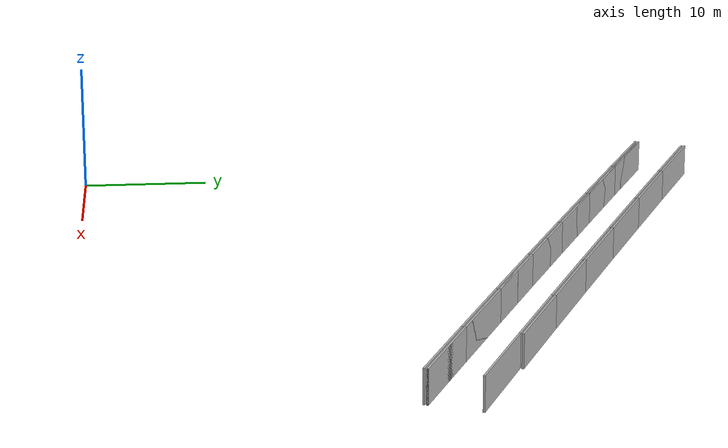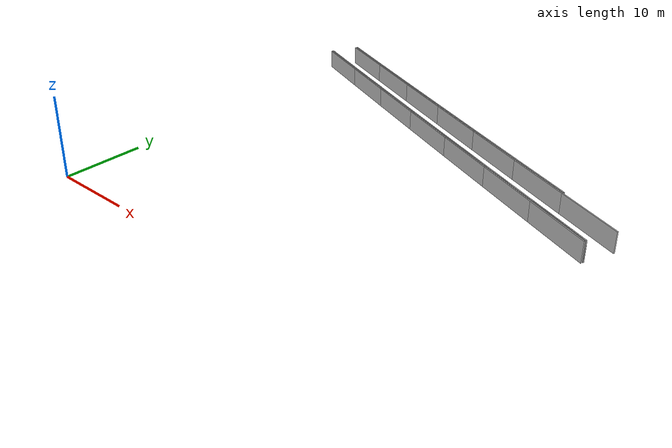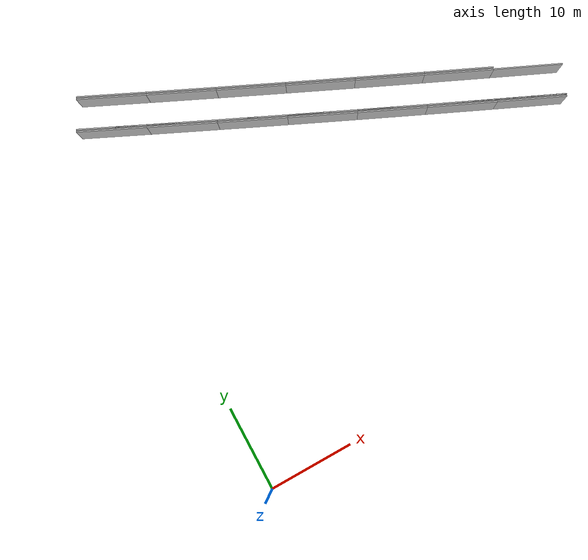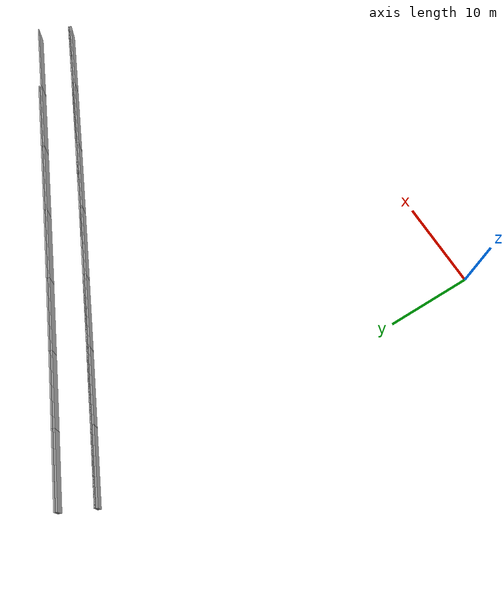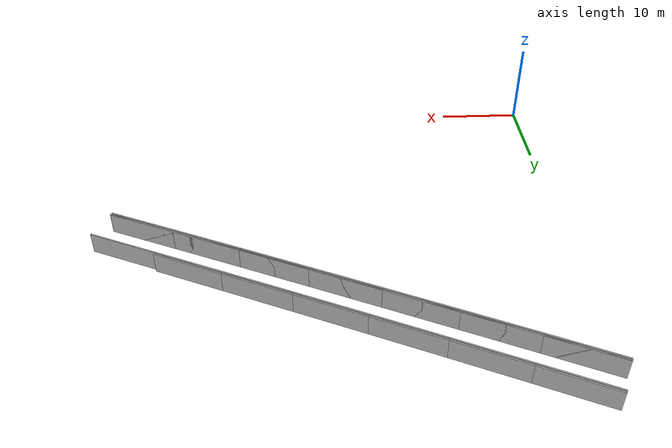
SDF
<?xml version="1.0" ?>
<sdf version="1.6">
  <model name="sps_0310">
    <pose frame="">0 0 0 0 -0 0</pose>
    <static>1</static>
    <self_collide>0</self_collide>
    <allow_auto_disable>0</allow_auto_disable>
    <link name="Wall4305">
      <kinematic>0</kinematic>
      <gravity>1</gravity>
      <self_collide>0</self_collide>
      <collision name="collision">
        <geometry>
          <box>
            <size>8.25169 0.15 2.5</size>
          </box>
        </geometry>
        <pose frame="">0 0 0 0 -0 0</pose>
      </collision>
      <visual name="visual">
        <geometry>
          <box>
            <size>8.25169 0.15 2.5</size>
          </box>
        </geometry>
        <pose frame="">0 0 0 0 -0 0</pose>
        <cast_shadows>1</cast_shadows>
        <transparency>0.0</transparency>
      </visual>
      <pose frame="">4.92705 48.6837 1.25 0 0 -0.43696</pose>
    </link>
    <link name="Wall4306">
      <kinematic>0</kinematic>
      <gravity>1</gravity>
      <self_collide>0</self_collide>
      <collision name="collision">
        <geometry>
          <box>
            <size>8.25156 0.15 2.5</size>
          </box>
        </geometry>
        <pose frame="">0 0 0 0 -0 0</pose>
      </collision>
      <visual name="visual">
        <geometry>
          <box>
            <size>8.25156 0.15 2.5</size>
          </box>
        </geometry>
        <pose frame="">0 0 0 0 -0 0</pose>
        <cast_shadows>1</cast_shadows>
        <transparency>0.0</transparency>
      </visual>
      <pose frame="">12.4076 45.2007 1.25 0 0 -0.43456</pose>
    </link>
    <link name="Wall4307">
      <kinematic>0</kinematic>
      <gravity>1</gravity>
      <self_collide>0</self_collide>
      <collision name="collision">
        <geometry>
          <box>
            <size>8.2516 0.15 2.5</size>
          </box>
        </geometry>
        <pose frame="">0 0 0 0 -0 0</pose>
      </collision>
      <visual name="visual">
        <geometry>
          <box>
            <size>8.2516 0.15 2.5</size>
          </box>
        </geometry>
        <pose frame="">0 0 0 0 -0 0</pose>
        <cast_shadows>1</cast_shadows>
        <transparency>0.0</transparency>
      </visual>
      <pose frame="">19.8963 41.7355 1.25 0 0 -0.43221</pose>
    </link>
    <link name="Wall4308">
      <kinematic>0</kinematic>
      <gravity>1</gravity>
      <self_collide>0</self_collide>
      <collision name="collision">
        <geometry>
          <box>
            <size>8.25149 0.15 2.5</size>
          </box>
        </geometry>
        <pose frame="">0 0 0 0 -0 0</pose>
      </collision>
      <visual name="visual">
        <geometry>
          <box>
            <size>8.25149 0.15 2.5</size>
          </box>
        </geometry>
        <pose frame="">0 0 0 0 -0 0</pose>
        <cast_shadows>1</cast_shadows>
        <transparency>0.0</transparency>
      </visual>
      <pose frame="">27.3931 38.2879 1.25 0 0 -0.429863</pose>
    </link>
    <link name="Wall4309">
      <kinematic>0</kinematic>
      <gravity>1</gravity>
      <self_collide>0</self_collide>
      <collision name="collision">
        <geometry>
          <box>
            <size>8.25128 0.15 2.5</size>
          </box>
        </geometry>
        <pose frame="">0 0 0 0 -0 0</pose>
      </collision>
      <visual name="visual">
        <geometry>
          <box>
            <size>8.25128 0.15 2.5</size>
          </box>
        </geometry>
        <pose frame="">0 0 0 0 -0 0</pose>
        <cast_shadows>1</cast_shadows>
        <transparency>0.0</transparency>
      </visual>
      <pose frame="">34.8978 34.8581 1.25 0 0 -0.427476</pose>
    </link>
    <link name="Wall4310">
      <kinematic>0</kinematic>
      <gravity>1</gravity>
      <self_collide>0</self_collide>
      <collision name="collision">
        <geometry>
          <box>
            <size>8.25168 0.15 2.5</size>
          </box>
        </geometry>
        <pose frame="">0 0 0 0 -0 0</pose>
      </collision>
      <visual name="visual">
        <geometry>
          <box>
            <size>8.25168 0.15 2.5</size>
          </box>
        </geometry>
        <pose frame="">0 0 0 0 -0 0</pose>
        <cast_shadows>1</cast_shadows>
        <transparency>0.0</transparency>
      </visual>
      <pose frame="">42.4108 31.4461 1.25 0 0 -0.425114</pose>
    </link>
    <link name="Wall4311">
      <kinematic>0</kinematic>
      <gravity>1</gravity>
      <self_collide>0</self_collide>
      <collision name="collision">
        <geometry>
          <box>
            <size>8.25174 0.15 2.5</size>
          </box>
        </geometry>
        <pose frame="">0 0 0 0 -0 0</pose>
      </collision>
      <visual name="visual">
        <geometry>
          <box>
            <size>8.25174 0.15 2.5</size>
          </box>
        </geometry>
        <pose frame="">0 0 0 0 -0 0</pose>
        <cast_shadows>1</cast_shadows>
        <transparency>0.0</transparency>
      </visual>
      <pose frame="">49.9321 28.0517 1.25 0 0 -0.422774</pose>
    </link>
    <link name="Wall4331">
      <kinematic>0</kinematic>
      <gravity>1</gravity>
      <self_collide>0</self_collide>
      <collision name="collision">
        <geometry>
          <box>
            <size>8.26097 0.15 2.5</size>
          </box>
        </geometry>
        <pose frame="">0 0 0 0 -0 0</pose>
      </collision>
      <visual name="visual">
        <geometry>
          <box>
            <size>8.26097 0.15 2.5</size>
          </box>
        </geometry>
        <pose frame="">0 0 0 0 -0 0</pose>
        <cast_shadows>1</cast_shadows>
        <transparency>0.0</transparency>
      </visual>
      <pose frame="">48.3585 24.6376 1.25 0 -0 2.71882</pose>
    </link>
    <link name="Wall4332">
      <kinematic>0</kinematic>
      <gravity>1</gravity>
      <self_collide>0</self_collide>
      <collision name="collision">
        <geometry>
          <box>
            <size>8.26113 0.15 2.5</size>
          </box>
        </geometry>
        <pose frame="">0 0 0 0 -0 0</pose>
      </collision>
      <visual name="visual">
        <geometry>
          <box>
            <size>8.26113 0.15 2.5</size>
          </box>
        </geometry>
        <pose frame="">0 0 0 0 -0 0</pose>
        <cast_shadows>1</cast_shadows>
        <transparency>0.0</transparency>
      </visual>
      <pose frame="">40.8288 28.0359 1.25 0 -0 2.71646</pose>
    </link>
    <link name="Wall4333">
      <kinematic>0</kinematic>
      <gravity>1</gravity>
      <self_collide>0</self_collide>
      <collision name="collision">
        <geometry>
          <box>
            <size>8.26078 0.15 2.5</size>
          </box>
        </geometry>
        <pose frame="">0 0 0 0 -0 0</pose>
      </collision>
      <visual name="visual">
        <geometry>
          <box>
            <size>8.26078 0.15 2.5</size>
          </box>
        </geometry>
        <pose frame="">0 0 0 0 -0 0</pose>
        <cast_shadows>1</cast_shadows>
        <transparency>0.0</transparency>
      </visual>
      <pose frame="">33.3072 31.4519 1.25 0 -0 2.7141</pose>
    </link>
    <link name="Wall4334">
      <kinematic>0</kinematic>
      <gravity>1</gravity>
      <self_collide>0</self_collide>
      <collision name="collision">
        <geometry>
          <box>
            <size>8.26097 0.15 2.5</size>
          </box>
        </geometry>
        <pose frame="">0 0 0 0 -0 0</pose>
      </collision>
      <visual name="visual">
        <geometry>
          <box>
            <size>8.26097 0.15 2.5</size>
          </box>
        </geometry>
        <pose frame="">0 0 0 0 -0 0</pose>
        <cast_shadows>1</cast_shadows>
        <transparency>0.0</transparency>
      </visual>
      <pose frame="">25.7938 34.8857 1.25 0 -0 2.71173</pose>
    </link>
    <link name="Wall4335">
      <kinematic>0</kinematic>
      <gravity>1</gravity>
      <self_collide>0</self_collide>
      <collision name="collision">
        <geometry>
          <box>
            <size>8.26118 0.15 2.5</size>
          </box>
        </geometry>
        <pose frame="">0 0 0 0 -0 0</pose>
      </collision>
      <visual name="visual">
        <geometry>
          <box>
            <size>8.26118 0.15 2.5</size>
          </box>
        </geometry>
        <pose frame="">0 0 0 0 -0 0</pose>
        <cast_shadows>1</cast_shadows>
        <transparency>0.0</transparency>
      </visual>
      <pose frame="">18.2884 38.3374 1.25 0 -0 2.70936</pose>
    </link>
    <link name="Wall4336">
      <kinematic>0</kinematic>
      <gravity>1</gravity>
      <self_collide>0</self_collide>
      <collision name="collision">
        <geometry>
          <box>
            <size>8.26087 0.15 2.5</size>
          </box>
        </geometry>
        <pose frame="">0 0 0 0 -0 0</pose>
      </collision>
      <visual name="visual">
        <geometry>
          <box>
            <size>8.26087 0.15 2.5</size>
          </box>
        </geometry>
        <pose frame="">0 0 0 0 -0 0</pose>
        <cast_shadows>1</cast_shadows>
        <transparency>0.0</transparency>
      </visual>
      <pose frame="">10.7912 41.8067 1.25 0 -0 2.70703</pose>
    </link>
    <link name="Wall4337">
      <kinematic>0</kinematic>
      <gravity>1</gravity>
      <self_collide>0</self_collide>
      <collision name="collision">
        <geometry>
          <box>
            <size>8.26102 0.15 2.5</size>
          </box>
        </geometry>
        <pose frame="">0 0 0 0 -0 0</pose>
      </collision>
      <visual name="visual">
        <geometry>
          <box>
            <size>8.26102 0.15 2.5</size>
          </box>
        </geometry>
        <pose frame="">0 0 0 0 -0 0</pose>
        <cast_shadows>1</cast_shadows>
        <transparency>0.0</transparency>
      </visual>
      <pose frame="">3.30224 45.2937 1.25 0 -0 2.70462</pose>
    </link>
    <link name="Wall18052">
      <kinematic>0</kinematic>
      <gravity>1</gravity>
      <self_collide>0</self_collide>
      <collision name="collision">
        <geometry>
          <box>
            <size>8.25098 0.15 2.5</size>
          </box>
        </geometry>
        <pose frame="">0 0 0 0 -0 0</pose>
      </collision>
      <visual name="visual">
        <geometry>
          <box>
            <size>8.25098 0.15 2.5</size>
          </box>
        </geometry>
        <pose frame="">0 0 0 0 -0 0</pose>
        <cast_shadows>1</cast_shadows>
        <transparency>0.0</transparency>
      </visual>
      <pose frame="">5.03515 48.9091 1.25 0 0 -0.436951</pose>
    </link>
    <link name="Wall18053">
      <kinematic>0</kinematic>
      <gravity>1</gravity>
      <self_collide>0</self_collide>
      <collision name="collision">
        <geometry>
          <box>
            <size>8.25093 0.15 2.5</size>
          </box>
        </geometry>
        <pose frame="">0 0 0 0 -0 0</pose>
      </collision>
      <visual name="visual">
        <geometry>
          <box>
            <size>8.25093 0.15 2.5</size>
          </box>
        </geometry>
        <pose frame="">0 0 0 0 -0 0</pose>
        <cast_shadows>1</cast_shadows>
        <transparency>0.0</transparency>
      </visual>
      <pose frame="">12.515 45.4264 1.25 0 0 -0.434571</pose>
    </link>
    <link name="Wall18054">
      <kinematic>0</kinematic>
      <gravity>1</gravity>
      <self_collide>0</self_collide>
      <collision name="collision">
        <geometry>
          <box>
            <size>8.25094 0.15 2.5</size>
          </box>
        </geometry>
        <pose frame="">0 0 0 0 -0 0</pose>
      </collision>
      <visual name="visual">
        <geometry>
          <box>
            <size>8.25094 0.15 2.5</size>
          </box>
        </geometry>
        <pose frame="">0 0 0 0 -0 0</pose>
        <cast_shadows>1</cast_shadows>
        <transparency>0.0</transparency>
      </visual>
      <pose frame="">20.0031 41.9614 1.25 0 0 -0.432215</pose>
    </link>
    <link name="Wall18055">
      <kinematic>0</kinematic>
      <gravity>1</gravity>
      <self_collide>0</self_collide>
      <collision name="collision">
        <geometry>
          <box>
            <size>8.25101 0.15 2.5</size>
          </box>
        </geometry>
        <pose frame="">0 0 0 0 -0 0</pose>
      </collision>
      <visual name="visual">
        <geometry>
          <box>
            <size>8.25101 0.15 2.5</size>
          </box>
        </geometry>
        <pose frame="">0 0 0 0 -0 0</pose>
        <cast_shadows>1</cast_shadows>
        <transparency>0.0</transparency>
      </visual>
      <pose frame="">27.4994 38.5141 1.25 0 0 -0.429842</pose>
    </link>
    <link name="Wall18056">
      <kinematic>0</kinematic>
      <gravity>1</gravity>
      <self_collide>0</self_collide>
      <collision name="collision">
        <geometry>
          <box>
            <size>8.25065 0.15 2.5</size>
          </box>
        </geometry>
        <pose frame="">0 0 0 0 -0 0</pose>
      </collision>
      <visual name="visual">
        <geometry>
          <box>
            <size>8.25065 0.15 2.5</size>
          </box>
        </geometry>
        <pose frame="">0 0 0 0 -0 0</pose>
        <cast_shadows>1</cast_shadows>
        <transparency>0.0</transparency>
      </visual>
      <pose frame="">35.0037 35.0846 1.25 0 0 -0.427486</pose>
    </link>
    <link name="Wall18057">
      <kinematic>0</kinematic>
      <gravity>1</gravity>
      <self_collide>0</self_collide>
      <collision name="collision">
        <geometry>
          <box>
            <size>8.25105 0.15 2.5</size>
          </box>
        </geometry>
        <pose frame="">0 0 0 0 -0 0</pose>
      </collision>
      <visual name="visual">
        <geometry>
          <box>
            <size>8.25105 0.15 2.5</size>
          </box>
        </geometry>
        <pose frame="">0 0 0 0 -0 0</pose>
        <cast_shadows>1</cast_shadows>
        <transparency>0.0</transparency>
      </visual>
      <pose frame="">42.5161 31.6728 1.25 0 0 -0.425125</pose>
    </link>
    <link name="Wall37640">
      <kinematic>0</kinematic>
      <gravity>1</gravity>
      <self_collide>0</self_collide>
      <collision name="collision">
        <geometry>
          <box>
            <size>8.25169 0.15 2.5</size>
          </box>
        </geometry>
        <pose frame="">0 0 0 0 -0 0</pose>
      </collision>
      <visual name="visual">
        <geometry>
          <box>
            <size>8.25169 0.15 2.5</size>
          </box>
        </geometry>
        <pose frame="">0 0 0 0 -0 0</pose>
        <cast_shadows>1</cast_shadows>
        <transparency>0.0</transparency>
      </visual>
      <pose frame="">4.92705 48.6837 1.25 0 0 -0.43696</pose>
    </link>
    <link name="Wall37641">
      <kinematic>0</kinematic>
      <gravity>1</gravity>
      <self_collide>0</self_collide>
      <collision name="collision">
        <geometry>
          <box>
            <size>8.25156 0.15 2.5</size>
          </box>
        </geometry>
        <pose frame="">0 0 0 0 -0 0</pose>
      </collision>
      <visual name="visual">
        <geometry>
          <box>
            <size>8.25156 0.15 2.5</size>
          </box>
        </geometry>
        <pose frame="">0 0 0 0 -0 0</pose>
        <cast_shadows>1</cast_shadows>
        <transparency>0.0</transparency>
      </visual>
      <pose frame="">12.4076 45.2007 1.25 0 0 -0.43456</pose>
    </link>
    <link name="Wall37642">
      <kinematic>0</kinematic>
      <gravity>1</gravity>
      <self_collide>0</self_collide>
      <collision name="collision">
        <geometry>
          <box>
            <size>8.2516 0.15 2.5</size>
          </box>
        </geometry>
        <pose frame="">0 0 0 0 -0 0</pose>
      </collision>
      <visual name="visual">
        <geometry>
          <box>
            <size>8.2516 0.15 2.5</size>
          </box>
        </geometry>
        <pose frame="">0 0 0 0 -0 0</pose>
        <cast_shadows>1</cast_shadows>
        <transparency>0.0</transparency>
      </visual>
      <pose frame="">19.8963 41.7355 1.25 0 0 -0.43221</pose>
    </link>
    <link name="Wall37643">
      <kinematic>0</kinematic>
      <gravity>1</gravity>
      <self_collide>0</self_collide>
      <collision name="collision">
        <geometry>
          <box>
            <size>8.25149 0.15 2.5</size>
          </box>
        </geometry>
        <pose frame="">0 0 0 0 -0 0</pose>
      </collision>
      <visual name="visual">
        <geometry>
          <box>
            <size>8.25149 0.15 2.5</size>
          </box>
        </geometry>
        <pose frame="">0 0 0 0 -0 0</pose>
        <cast_shadows>1</cast_shadows>
        <transparency>0.0</transparency>
      </visual>
      <pose frame="">27.3931 38.2879 1.25 0 0 -0.429863</pose>
    </link>
    <link name="Wall37644">
      <kinematic>0</kinematic>
      <gravity>1</gravity>
      <self_collide>0</self_collide>
      <collision name="collision">
        <geometry>
          <box>
            <size>8.25128 0.15 2.5</size>
          </box>
        </geometry>
        <pose frame="">0 0 0 0 -0 0</pose>
      </collision>
      <visual name="visual">
        <geometry>
          <box>
            <size>8.25128 0.15 2.5</size>
          </box>
        </geometry>
        <pose frame="">0 0 0 0 -0 0</pose>
        <cast_shadows>1</cast_shadows>
        <transparency>0.0</transparency>
      </visual>
      <pose frame="">34.8978 34.8581 1.25 0 0 -0.427476</pose>
    </link>
    <link name="Wall37645">
      <kinematic>0</kinematic>
      <gravity>1</gravity>
      <self_collide>0</self_collide>
      <collision name="collision">
        <geometry>
          <box>
            <size>8.25168 0.15 2.5</size>
          </box>
        </geometry>
        <pose frame="">0 0 0 0 -0 0</pose>
      </collision>
      <visual name="visual">
        <geometry>
          <box>
            <size>8.25168 0.15 2.5</size>
          </box>
        </geometry>
        <pose frame="">0 0 0 0 -0 0</pose>
        <cast_shadows>1</cast_shadows>
        <transparency>0.0</transparency>
      </visual>
      <pose frame="">42.4108 31.4461 1.25 0 0 -0.425114</pose>
    </link>
    <link name="Wall37646">
      <kinematic>0</kinematic>
      <gravity>1</gravity>
      <self_collide>0</self_collide>
      <collision name="collision">
        <geometry>
          <box>
            <size>8.25174 0.15 2.5</size>
          </box>
        </geometry>
        <pose frame="">0 0 0 0 -0 0</pose>
      </collision>
      <visual name="visual">
        <geometry>
          <box>
            <size>8.25174 0.15 2.5</size>
          </box>
        </geometry>
        <pose frame="">0 0 0 0 -0 0</pose>
        <cast_shadows>1</cast_shadows>
        <transparency>0.0</transparency>
      </visual>
      <pose frame="">49.9321 28.0517 1.25 0 0 -0.422774</pose>
    </link>
    <link name="Wall37860">
      <kinematic>0</kinematic>
      <gravity>1</gravity>
      <self_collide>0</self_collide>
      <collision name="collision">
        <geometry>
          <box>
            <size>8.26165 0.15 2.5</size>
          </box>
        </geometry>
        <pose frame="">0 0 0 0 -0 0</pose>
      </collision>
      <visual name="visual">
        <geometry>
          <box>
            <size>8.26165 0.15 2.5</size>
          </box>
        </geometry>
        <pose frame="">0 0 0 0 -0 0</pose>
        <cast_shadows>1</cast_shadows>
        <transparency>0.0</transparency>
      </visual>
      <pose frame="">3.19414 45.0684 1.25 0 0 -0.436959</pose>
    </link>
    <link name="Wall37861">
      <kinematic>0</kinematic>
      <gravity>1</gravity>
      <self_collide>0</self_collide>
      <collision name="collision">
        <geometry>
          <box>
            <size>8.26155 0.15 2.5</size>
          </box>
        </geometry>
        <pose frame="">0 0 0 0 -0 0</pose>
      </collision>
      <visual name="visual">
        <geometry>
          <box>
            <size>8.26155 0.15 2.5</size>
          </box>
        </geometry>
        <pose frame="">0 0 0 0 -0 0</pose>
        <cast_shadows>1</cast_shadows>
        <transparency>0.0</transparency>
      </visual>
      <pose frame="">10.6836 41.5811 1.25 0 0 -0.434585</pose>
    </link>
    <link name="Wall37862">
      <kinematic>0</kinematic>
      <gravity>1</gravity>
      <self_collide>0</self_collide>
      <collision name="collision">
        <geometry>
          <box>
            <size>8.26178 0.15 2.5</size>
          </box>
        </geometry>
        <pose frame="">0 0 0 0 -0 0</pose>
      </collision>
      <visual name="visual">
        <geometry>
          <box>
            <size>8.26178 0.15 2.5</size>
          </box>
        </geometry>
        <pose frame="">0 0 0 0 -0 0</pose>
        <cast_shadows>1</cast_shadows>
        <transparency>0.0</transparency>
      </visual>
      <pose frame="">18.1814 38.1115 1.25 0 0 -0.432219</pose>
    </link>
    <link name="Wall37863">
      <kinematic>0</kinematic>
      <gravity>1</gravity>
      <self_collide>0</self_collide>
      <collision name="collision">
        <geometry>
          <box>
            <size>8.26165 0.15 2.5</size>
          </box>
        </geometry>
        <pose frame="">0 0 0 0 -0 0</pose>
      </collision>
      <visual name="visual">
        <geometry>
          <box>
            <size>8.26165 0.15 2.5</size>
          </box>
        </geometry>
        <pose frame="">0 0 0 0 -0 0</pose>
        <cast_shadows>1</cast_shadows>
        <transparency>0.0</transparency>
      </visual>
      <pose frame="">25.6875 34.6596 1.25 0 0 -0.429869</pose>
    </link>
    <link name="Wall37864">
      <kinematic>0</kinematic>
      <gravity>1</gravity>
      <self_collide>0</self_collide>
      <collision name="collision">
        <geometry>
          <box>
            <size>8.26149 0.15 2.5</size>
          </box>
        </geometry>
        <pose frame="">0 0 0 0 -0 0</pose>
      </collision>
      <visual name="visual">
        <geometry>
          <box>
            <size>8.26149 0.15 2.5</size>
          </box>
        </geometry>
        <pose frame="">0 0 0 0 -0 0</pose>
        <cast_shadows>1</cast_shadows>
        <transparency>0.0</transparency>
      </visual>
      <pose frame="">33.2015 31.2255 1.25 0 0 -0.427498</pose>
    </link>
    <link name="Wall37865">
      <kinematic>0</kinematic>
      <gravity>1</gravity>
      <self_collide>0</self_collide>
      <collision name="collision">
        <geometry>
          <box>
            <size>8.26159 0.15 2.5</size>
          </box>
        </geometry>
        <pose frame="">0 0 0 0 -0 0</pose>
      </collision>
      <visual name="visual">
        <geometry>
          <box>
            <size>8.26159 0.15 2.5</size>
          </box>
        </geometry>
        <pose frame="">0 0 0 0 -0 0</pose>
        <cast_shadows>1</cast_shadows>
        <transparency>0.0</transparency>
      </visual>
      <pose frame="">40.7236 27.8092 1.25 0 0 -0.425131</pose>
    </link>
    <link name="Wall37866">
      <kinematic>0</kinematic>
      <gravity>1</gravity>
      <self_collide>0</self_collide>
      <collision name="collision">
        <geometry>
          <box>
            <size>8.26177 0.15 2.5</size>
          </box>
        </geometry>
        <pose frame="">0 0 0 0 -0 0</pose>
      </collision>
      <visual name="visual">
        <geometry>
          <box>
            <size>8.26177 0.15 2.5</size>
          </box>
        </geometry>
        <pose frame="">0 0 0 0 -0 0</pose>
        <cast_shadows>1</cast_shadows>
        <transparency>0.0</transparency>
      </visual>
      <pose frame="">48.2539 24.4107 1.25 0 0 -0.422754</pose>
    </link>
    <link name="Wall37943">
      <kinematic>0</kinematic>
      <gravity>1</gravity>
      <self_collide>0</self_collide>
      <collision name="collision">
        <geometry>
          <box>
            <size>8.26102 0.15 2.5</size>
          </box>
        </geometry>
        <pose frame="">0 0 0 0 -0 0</pose>
      </collision>
      <visual name="visual">
        <geometry>
          <box>
            <size>8.26102 0.15 2.5</size>
          </box>
        </geometry>
        <pose frame="">0 0 0 0 -0 0</pose>
        <cast_shadows>1</cast_shadows>
        <transparency>0.0</transparency>
      </visual>
      <pose frame="">3.30224 45.2937 1.25 0 0 -0.43697</pose>
    </link>
    <link name="Wall37944">
      <kinematic>0</kinematic>
      <gravity>1</gravity>
      <self_collide>0</self_collide>
      <collision name="collision">
        <geometry>
          <box>
            <size>8.26087 0.15 2.5</size>
          </box>
        </geometry>
        <pose frame="">0 0 0 0 -0 0</pose>
      </collision>
      <visual name="visual">
        <geometry>
          <box>
            <size>8.26087 0.15 2.5</size>
          </box>
        </geometry>
        <pose frame="">0 0 0 0 -0 0</pose>
        <cast_shadows>1</cast_shadows>
        <transparency>0.0</transparency>
      </visual>
      <pose frame="">10.7912 41.8067 1.25 0 0 -0.434566</pose>
    </link>
    <link name="Wall37945">
      <kinematic>0</kinematic>
      <gravity>1</gravity>
      <self_collide>0</self_collide>
      <collision name="collision">
        <geometry>
          <box>
            <size>8.26118 0.15 2.5</size>
          </box>
        </geometry>
        <pose frame="">0 0 0 0 -0 0</pose>
      </collision>
      <visual name="visual">
        <geometry>
          <box>
            <size>8.26118 0.15 2.5</size>
          </box>
        </geometry>
        <pose frame="">0 0 0 0 -0 0</pose>
        <cast_shadows>1</cast_shadows>
        <transparency>0.0</transparency>
      </visual>
      <pose frame="">18.2884 38.3374 1.25 0 0 -0.432237</pose>
    </link>
    <link name="Wall37946">
      <kinematic>0</kinematic>
      <gravity>1</gravity>
      <self_collide>0</self_collide>
      <collision name="collision">
        <geometry>
          <box>
            <size>8.26097 0.15 2.5</size>
          </box>
        </geometry>
        <pose frame="">0 0 0 0 -0 0</pose>
      </collision>
      <visual name="visual">
        <geometry>
          <box>
            <size>8.26097 0.15 2.5</size>
          </box>
        </geometry>
        <pose frame="">0 0 0 0 -0 0</pose>
        <cast_shadows>1</cast_shadows>
        <transparency>0.0</transparency>
      </visual>
      <pose frame="">25.7938 34.8857 1.25 0 0 -0.429866</pose>
    </link>
    <link name="Wall37947">
      <kinematic>0</kinematic>
      <gravity>1</gravity>
      <self_collide>0</self_collide>
      <collision name="collision">
        <geometry>
          <box>
            <size>8.26078 0.15 2.5</size>
          </box>
        </geometry>
        <pose frame="">0 0 0 0 -0 0</pose>
      </collision>
      <visual name="visual">
        <geometry>
          <box>
            <size>8.26078 0.15 2.5</size>
          </box>
        </geometry>
        <pose frame="">0 0 0 0 -0 0</pose>
        <cast_shadows>1</cast_shadows>
        <transparency>0.0</transparency>
      </visual>
      <pose frame="">33.3072 31.4519 1.25 0 0 -0.427488</pose>
    </link>
    <link name="Wall37948">
      <kinematic>0</kinematic>
      <gravity>1</gravity>
      <self_collide>0</self_collide>
      <collision name="collision">
        <geometry>
          <box>
            <size>8.26113 0.15 2.5</size>
          </box>
        </geometry>
        <pose frame="">0 0 0 0 -0 0</pose>
      </collision>
      <visual name="visual">
        <geometry>
          <box>
            <size>8.26113 0.15 2.5</size>
          </box>
        </geometry>
        <pose frame="">0 0 0 0 -0 0</pose>
        <cast_shadows>1</cast_shadows>
        <transparency>0.0</transparency>
      </visual>
      <pose frame="">40.8288 28.0359 1.25 0 0 -0.425132</pose>
    </link>
    <link name="Wall37949">
      <kinematic>0</kinematic>
      <gravity>1</gravity>
      <self_collide>0</self_collide>
      <collision name="collision">
        <geometry>
          <box>
            <size>8.26097 0.15 2.5</size>
          </box>
        </geometry>
        <pose frame="">0 0 0 0 -0 0</pose>
      </collision>
      <visual name="visual">
        <geometry>
          <box>
            <size>8.26097 0.15 2.5</size>
          </box>
        </geometry>
        <pose frame="">0 0 0 0 -0 0</pose>
        <cast_shadows>1</cast_shadows>
        <transparency>0.0</transparency>
      </visual>
      <pose frame="">48.3585 24.6376 1.25 0 0 -0.422773</pose>
    </link>
  </model>
</sdf>
